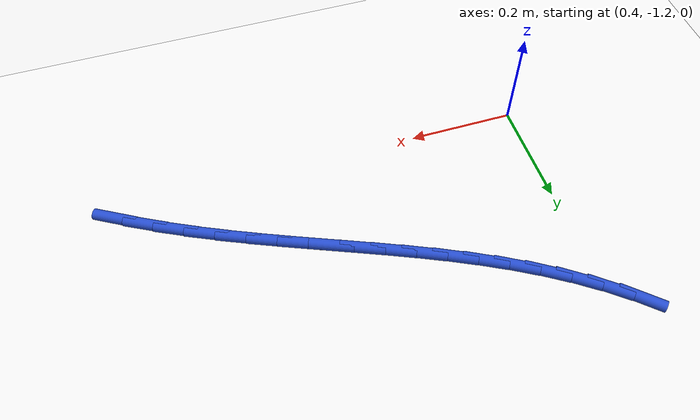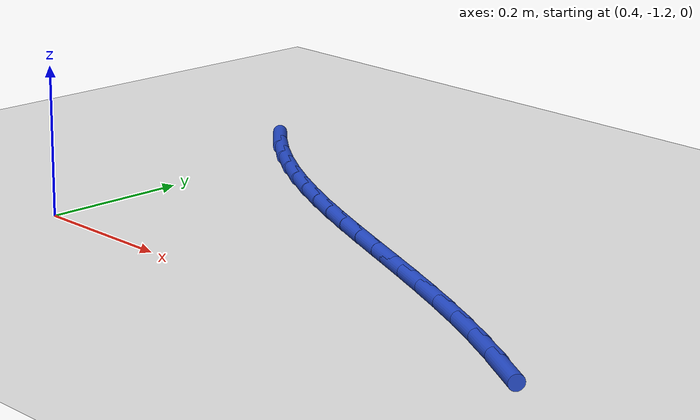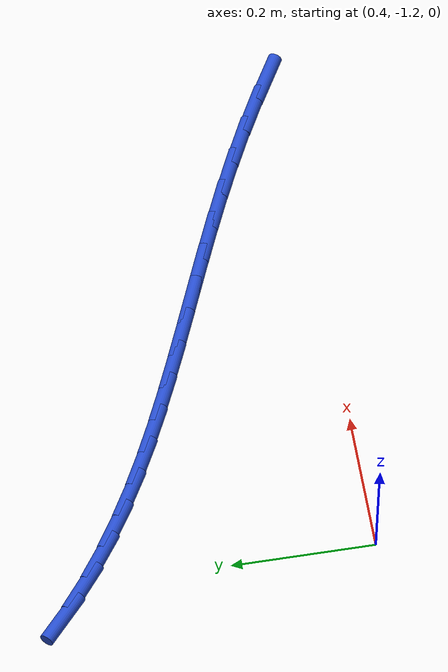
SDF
<sdf version="1.6">
 <world name="default">
  <model name="ground_plane">
   <static>1</static>
   <link name="link">
    <collision name="collision">
     <geometry><plane><normal>0 0 1</normal><size>100 100</size></plane></geometry>
     <surface><friction><ode><mu>100</mu><mu2>50</mu2></ode></friction></surface>
    </collision>
    <visual name="visual">
     <cast_shadows>0</cast_shadows>
     <geometry><plane><normal>0 0 1</normal><size>100 100</size></plane></geometry>
     <material>
      <script><uri>file://media/materials/scripts/gazebo.material</uri><name>Gazebo/WhiteGlow</name></script>
     </material>
    </visual>
   </link>
  </model>
  <model name="line">
   <link name="link_107">
    <pose>1.1670114899492219 -1.179287020830856 0.01 0 1.57 -0.5188627123903289</pose>
    <collision name="collision">
     <geometry><cylinder><radius>0.01</radius><length>0.08</length></cylinder></geometry>
    </collision>
    <visual name="visual">
     <material>
      <script><name>Gazebo/Blue</name><uri>file://media/materials/scripts/gazebo.material</uri></script>
     </material>
     <geometry><cylinder><radius>0.01</radius><length>0.08</length></cylinder></geometry>
    </visual>
   </link>
   <link name="link_108">
    <pose>1.1172455059069855 -1.150868021720674 0.01 0 1.57 -0.48758885937392554</pose>
    <collision name="collision">
     <geometry><cylinder><radius>0.01</radius><length>0.08</length></cylinder></geometry>
    </collision>
    <visual name="visual">
     <material>
      <script><name>Gazebo/Blue</name><uri>file://media/materials/scripts/gazebo.material</uri></script>
     </material>
     <geometry><cylinder><radius>0.01</radius><length>0.08</length></cylinder></geometry>
    </visual>
   </link>
   <link name="link_109">
    <pose>1.0671389131670959 -1.1242967460488391 0.01 0 1.57 -0.45758810967995645</pose>
    <collision name="collision">
     <geometry><cylinder><radius>0.01</radius><length>0.08</length></cylinder></geometry>
    </collision>
    <visual name="visual">
     <material>
      <script><name>Gazebo/Blue</name><uri>file://media/materials/scripts/gazebo.material</uri></script>
     </material>
     <geometry><cylinder><radius>0.01</radius><length>0.08</length></cylinder></geometry>
    </visual>
   </link>
   <link name="link_110">
    <pose>1.0167782593615577 -1.0994967220126102 0.01 0 1.57 -0.43302990312347556</pose>
    <collision name="collision">
     <geometry><cylinder><radius>0.01</radius><length>0.08</length></cylinder></geometry>
    </collision>
    <visual name="visual">
     <material>
      <script><name>Gazebo/Blue</name><uri>file://media/materials/scripts/gazebo.material</uri></script>
     </material>
     <geometry><cylinder><radius>0.01</radius><length>0.08</length></cylinder></geometry>
    </visual>
   </link>
   <link name="link_111">
    <pose>0.9662844372383633 -1.076153764831224 0.01 0 1.57 -0.4141317903452567</pose>
    <collision name="collision">
     <geometry><cylinder><radius>0.01</radius><length>0.08</length></cylinder></geometry>
    </collision>
    <visual name="visual">
     <material>
      <script><name>Gazebo/Blue</name><uri>file://media/materials/scripts/gazebo.material</uri></script>
     </material>
     <geometry><cylinder><radius>0.01</radius><length>0.08</length></cylinder></geometry>
    </visual>
   </link>
   <link name="link_112">
    <pose>0.9157783395455056 -1.0539536897239188 0.01 0 1.57 -0.4010711998637591</pose>
    <collision name="collision">
     <geometry><cylinder><radius>0.01</radius><length>0.08</length></cylinder></geometry>
    </collision>
    <visual name="visual">
     <material>
      <script><name>Gazebo/Blue</name><uri>file://media/materials/scripts/gazebo.material</uri></script>
     </material>
     <geometry><cylinder><radius>0.01</radius><length>0.08</length></cylinder></geometry>
    </visual>
   </link>
   <link name="link_113">
    <pose>0.8653808590309766 -1.03258231190993 0.01 0 1.57 -0.3940018386167567</pose>
    <collision name="collision">
     <geometry><cylinder><radius>0.01</radius><length>0.08</length></cylinder></geometry>
    </collision>
    <visual name="visual">
     <material>
      <script><name>Gazebo/Blue</name><uri>file://media/materials/scripts/gazebo.material</uri></script>
     </material>
     <geometry><cylinder><radius>0.01</radius><length>0.08</length></cylinder></geometry>
    </visual>
   </link>
   <link name="link_114">
    <pose>0.8152128884427713 -1.0117254466084964 0.01 0 1.57 -0.393066117928497</pose>
    <collision name="collision">
     <geometry><cylinder><radius>0.01</radius><length>0.08</length></cylinder></geometry>
    </collision>
    <visual name="visual">
     <material>
      <script><name>Gazebo/Blue</name><uri>file://media/materials/scripts/gazebo.material</uri></script>
     </material>
     <geometry><cylinder><radius>0.01</radius><length>0.08</length></cylinder></geometry>
    </visual>
   </link>
   <link name="link_115">
    <pose>0.765395320528881 -0.991068909038854 0.01 0 1.57 -0.3984022344774185</pose>
    <collision name="collision">
     <geometry><cylinder><radius>0.01</radius><length>0.08</length></cylinder></geometry>
    </collision>
    <visual name="visual">
     <material>
      <script><name>Gazebo/Blue</name><uri>file://media/materials/scripts/gazebo.material</uri></script>
     </material>
     <geometry><cylinder><radius>0.01</radius><length>0.08</length></cylinder></geometry>
    </visual>
   </link>
   <link name="link_116">
    <pose>0.716049048037299 -0.9702985144202403 0.01 0 1.57 -0.410144736931504</pose>
    <collision name="collision">
     <geometry><cylinder><radius>0.01</radius><length>0.08</length></cylinder></geometry>
    </collision>
    <visual name="visual">
     <material>
      <script><name>Gazebo/Blue</name><uri>file://media/materials/scripts/gazebo.material</uri></script>
     </material>
     <geometry><cylinder><radius>0.01</radius><length>0.08</length></cylinder></geometry>
    </visual>
   </link>
   <link name="link_117">
    <pose>0.6672949637160176 -0.9491000779718922 0.01 0 1.57 -0.42841746040914097</pose>
    <collision name="collision">
     <geometry><cylinder><radius>0.01</radius><length>0.08</length></cylinder></geometry>
    </collision>
    <visual name="visual">
     <material>
      <script><name>Gazebo/Blue</name><uri>file://media/materials/scripts/gazebo.material</uri></script>
     </material>
     <geometry><cylinder><radius>0.01</radius><length>0.08</length></cylinder></geometry>
    </visual>
   </link>
   <link name="link_118">
    <pose>0.6192539603130314 -0.9271594149130474 0.01 0 1.57 -0.453317773530333</pose>
    <collision name="collision">
     <geometry><cylinder><radius>0.01</radius><length>0.08</length></cylinder></geometry>
    </collision>
    <visual name="visual">
     <material>
      <script><name>Gazebo/Blue</name><uri>file://media/materials/scripts/gazebo.material</uri></script>
     </material>
     <geometry><cylinder><radius>0.01</radius><length>0.08</length></cylinder></geometry>
    </visual>
   </link>
   <link name="link_119">
    <pose>0.5720469305763322 -0.9041623404629432 0.01 0 1.57 -0.48489140064477615</pose>
    <collision name="collision">
     <geometry><cylinder><radius>0.01</radius><length>0.08</length></cylinder></geometry>
    </collision>
    <visual name="visual">
     <material>
      <script><name>Gazebo/Blue</name><uri>file://media/materials/scripts/gazebo.material</uri></script>
     </material>
     <geometry><cylinder><radius>0.01</radius><length>0.08</length></cylinder></geometry>
    </visual>
   </link>
   <link name="link_120">
    <pose>0.5257947672539126 -0.8797946698408156 0.01 0 1.57 -0.5230979680562517</pose>
    <collision name="collision">
     <geometry><cylinder><radius>0.01</radius><length>0.08</length></cylinder></geometry>
    </collision>
    <visual name="visual">
     <material>
      <script><name>Gazebo/Blue</name><uri>file://media/materials/scripts/gazebo.material</uri></script>
     </material>
     <geometry><cylinder><radius>0.01</radius><length>0.08</length></cylinder></geometry>
    </visual>
   </link>
   <link name="link_121">
    <pose>0.48061836309376627 -0.8537422182659027 0.01 0 1.57 -0.5677691906247672</pose>
    <collision name="collision">
     <geometry><cylinder><radius>0.01</radius><length>0.08</length></cylinder></geometry>
    </collision>
    <visual name="visual">
     <material>
      <script><name>Gazebo/Blue</name><uri>file://media/materials/scripts/gazebo.material</uri></script>
     </material>
     <geometry><cylinder><radius>0.01</radius><length>0.08</length></cylinder></geometry>
    </visual>
   </link>
   <link name="link_122">
    <pose>0.43663861084388494 -0.8256908009574407 0.01 0 1.57 -0.6185643966120854</pose>
    <collision name="collision">
     <geometry><cylinder><radius>0.01</radius><length>0.08</length></cylinder></geometry>
    </collision>
    <visual name="visual">
     <material>
      <script><name>Gazebo/Blue</name><uri>file://media/materials/scripts/gazebo.material</uri></script>
     </material>
     <geometry><cylinder><radius>0.01</radius><length>0.08</length></cylinder></geometry>
    </visual>
   </link>
   <link name="link_123">
    <pose>0.39397640325226324 -0.795326233134668 0.01 0 1.57 -0.6746970773772996</pose>
    <collision name="collision">
     <geometry><cylinder><radius>0.01</radius><length>0.08</length></cylinder></geometry>
    </collision>
    <visual name="visual">
     <material>
      <script><name>Gazebo/Blue</name><uri>file://media/materials/scripts/gazebo.material</uri></script>
     </material>
     <geometry><cylinder><radius>0.01</radius><length>0.08</length></cylinder></geometry>
    </visual>
   </link>
   <link name="link_124">
    <pose>0.3527535500572927 -0.7623509159785847 0.01 0 1.57 -0.7318852647772527</pose>
    <collision name="collision">
     <geometry><cylinder><radius>0.01</radius><length>0.08</length></cylinder></geometry>
    </collision>
    <visual name="visual">
     <material>
      <script><name>Gazebo/Blue</name><uri>file://media/materials/scripts/gazebo.material</uri></script>
     </material>
     <geometry><cylinder><radius>0.01</radius><length>0.08</length></cylinder></geometry>
    </visual>
   </link>
  </model>
 </world>
</sdf>
